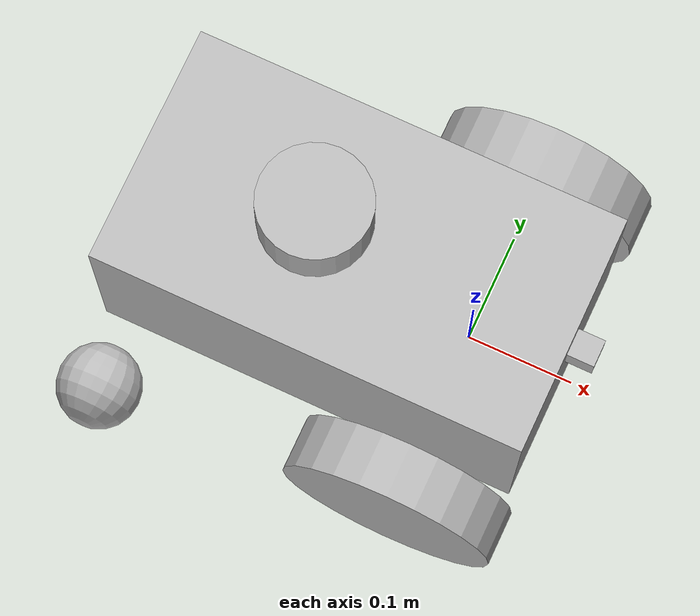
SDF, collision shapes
<?xml version="1.0" ?>
<sdf version="1.5">

<model name="magni_robot">
  <pose>0.0 0.0 0.0 0.0 0.0 0.0</pose>

  <link name="base_footprint"/>

  <link name="base_link">

    <inertial>
      <pose>-0.15 0 0.03 0 0 0</pose>
      <inertia>
        <ixx>0.0595</ixx>
        <ixy>0</ixy>
        <ixz>0</ixz>
        <iyy>0.1508</iyy>
        <iyz>0</iyz>
        <izz>0.1727</izz>
      </inertia>
      <mass>10</mass>
    </inertial>

    <collision name="base_collision">
      <pose>-0.11 0 0.07 0 0 0</pose>
      <geometry>
        <box>
          <size>0.4 0.22  0.195</size>
        </box>
      </geometry>
    </collision>

    <visual name="base_visual">
    <pose>-0.11 0 -0.029 0 0 0</pose>
    <geometry>
      <mesh>
        <uri>model://magni_robot/meshes/magni_body.dae</uri>
        <scale>1 1 1</scale>
      </mesh>
    </geometry>
    </visual>
  </link>

  <link name="imu_link">
    <sensor name="tb3_imu" type="imu">
      <always_on>true</always_on>
      <update_rate>10</update_rate>
      <imu>
      <angular_velocity>
        <x>
          <noise type="gaussian">
          <mean>0.0</mean>
          <stddev>2e-4</stddev>
          </noise>
        </x>
        <y>
          <noise type="gaussian">
          <mean>0.0</mean>
          <stddev>2e-4</stddev>
          </noise>
        </y>
        <z>
          <noise type="gaussian">
          <mean>0.0</mean>
          <stddev>2e-4</stddev>
          </noise>
        </z>
      </angular_velocity>
      <linear_acceleration>
        <x>
          <noise type="gaussian">
          <mean>0.0</mean>
          <stddev>1.7e-2</stddev>
          </noise>
        </x>
        <y>
          <noise type="gaussian">
          <mean>0.0</mean>
          <stddev>1.7e-2</stddev>
          </noise>
        </y>
        <z>
          <noise type="gaussian">
          <mean>0.0</mean>
          <stddev>1.7e-2</stddev>
          </noise>
        </z>
      </linear_acceleration>
      </imu>

      <plugin name="imu" filename="libgazebo_ros_imu_sensor.so">
        <ros>
        <remapping>~/out:=imu</remapping>
        </ros>
      </plugin>
    </sensor>
  </link>

  <link name="base_scan">
    <inertial>
      <pose>-0.15 0  0.195 0 0 0</pose>
      <inertia>
        <ixx>0.001</ixx>
        <ixy>0.000</ixy>
        <ixz>0.000</ixz>
        <iyy>0.001</iyy>
        <iyz>0.000</iyz>
        <izz>0.001</izz>
      </inertia>
      <mass>0.114</mass>
    </inertial>

    <collision name="lidar_sensor_collision">
      <pose>-0.15  0  0.195 0 0 0</pose>
      <geometry>
        <cylinder>
          <radius>0.0508</radius>
          <length>0.055</length>
        </cylinder>
      </geometry>
    </collision>

    <visual name="lidar_sensor_visual">
      <pose>-0.162 0 0.195 0 0 0</pose>
      <geometry>
        <cylinder>
          <radius>0.0508</radius>
          <length>0.055</length>
        </cylinder>
      </geometry>
    </visual>

    <sensor name="hls_lfcd_lds" type="ray">
      <visualize>true</visualize>
      <pose>-0.162 0 0.22 0 0 0</pose>
      <update_rate>30</update_rate>
      <ray>
        <scan>
          <horizontal>
            <samples>360</samples>
            <resolution>1.000000</resolution>
            <min_angle>0.000000</min_angle>
            <max_angle>6.28</max_angle>
          </horizontal>
        </scan>
        <range>
          <min>0.120000</min>
          <max>3.5</max>
          <resolution>0.015000</resolution>
        </range>
        <noise>
          <type>gaussian</type>
          <mean>0.0</mean>
          <stddev>0.01</stddev>
        </noise>
      </ray>

      <plugin name="Lidar_gazebo" filename="libgazebo_ros_ray_sensor.so">
        <ros>
          <remapping>~/out:=scan</remapping>
        </ros>
        <output_type>sensor_msgs/LaserScan</output_type>
        <frame_name>base_scan</frame_name>
      </plugin>
    </sensor>
  </link>

  <link name="wheel_left_link">

    <inertial>
      <pose>0 0.155  0 0 0 0</pose>
      <inertia>
        <ixx>0.0090</ixx>
        <ixy>0</ixy>
        <ixz>0</ixz>
        <iyy>0.0090</iyy>
        <iyz>0</iyz>
        <izz>0.0167</izz>
      </inertia>
      <mass>3.34</mass>
    </inertial>

    <collision name="wheel_left_collision">
      <pose>0 0.155 0 1.57 0 0</pose>
      <geometry>
      <cylinder>
      <radius>0.1</radius>
      <length>0.05</length>
      </cylinder>
      </geometry>
      <surface>
        <friction>
          <ode>
            <mu>1</mu>
            <mu2>0.5</mu2>
            <fdir1>0 0 1</fdir1>
            <slip1>0.0</slip1>
            <slip2>0.0</slip2>
          </ode>
        </friction>
        <contact>
          <ode>
            <soft_cfm>0</soft_cfm>
            <soft_erp>0.2</soft_erp>
            <kp>1e+8</kp>
            <kd>1</kd>
            <max_vel>0.01</max_vel>
            <min_depth>0.005</min_depth>
          </ode>
        </contact>
      </surface>
    </collision>

    <visual name="wheel_left_visual">
      <pose>0 0.085 0 0 0 1.57</pose>
      <geometry>
        <mesh>
          <uri>model://magni_robot/meshes/front_wheel.dae</uri>
          <scale>1 1 1</scale>
        </mesh>
      </geometry>
    </visual>
  </link>

  <link name="wheel_right_link">
    <inertial>
      <pose>0 -0.155  0 0 0 0</pose>
      <inertia>
        <ixx>0.0090</ixx>
        <ixy>0</ixy>
        <ixz>0</ixz>
        <iyy>0.0090</iyy>
        <iyz>0</iyz>
        <izz>0.0167</izz>
      </inertia>
      <mass>3.34</mass>
    </inertial>

    <collision name="wheel_right_collision">
      <pose>0.0 -0.155 0 1.57 0 0 </pose>
      <geometry>
      <cylinder>
      <radius>0.1</radius>
      <length>0.05</length>
      </cylinder>
      </geometry>
      <surface>
        <friction>
          <ode>
            <mu>1</mu>
            <mu2>0.5</mu2>
            <fdir1>0 0 1</fdir1>
            <slip1>0.0</slip1>
            <slip2>0.0</slip2>
          </ode>
        </friction>
        <contact>
          <ode>
            <soft_cfm>0</soft_cfm>
            <soft_erp>0.2</soft_erp>
            <kp>1e+8</kp>
            <kd>1</kd>
            <max_vel>0.01</max_vel>
            <min_depth>0.005</min_depth>
          </ode>
        </contact>
      </surface>
    </collision>

    <visual name="wheel_right_visual">
    <pose>0 -0.085 0 0 0 -1.57</pose>
    <geometry>
    <mesh>
    <uri>model://magni_robot/meshes/front_wheel.dae</uri>
    <scale>1 1 1</scale>
    </mesh>
    </geometry>
    </visual>
  </link>

  <link name='caster_right_link'>
    <pose>-0.081 0 -0.004 -1.57 0 0</pose>
    <inertial>
      <mass>0.005</mass>
      <inertia>
        <ixx>0.001</ixx>
        <ixy>0.000</ixy>
        <ixz>0.000</ixz>
        <iyy>0.001</iyy>
        <iyz>0.000</iyz>
        <izz>0.001</izz>
      </inertia>
    </inertial>
    <collision name='collision'>
      <pose>-0.21 0.055 -0.17 0 0 0</pose>
      <geometry>
        <sphere>
          <radius>0.04</radius>
        </sphere>
      </geometry>
      <surface>
        <friction>
          <ode>
            <mu>0</mu>
            <mu2>0</mu2>
            <fdir1>0 0 1</fdir1>
            <slip1>0.0</slip1>
            <slip2>0.0</slip2>
          </ode>
        </friction>
        <contact>
          <ode>
            <soft_cfm>0</soft_cfm>
            <soft_erp>0.2</soft_erp>
            <kp>1e+8</kp>
            <kd>1</kd>
            <max_vel>0.01</max_vel>
            <min_depth>0.001</min_depth>
          </ode>
        </contact>
      </surface>
    </collision>

    <visual name ="caster_right_link_visual">
      <pose>-0.19 0.0 -0.17 1.57 3.142 0</pose>
      <geometry>
        <mesh>
          <uri>model://magni_robot/meshes/caster_wheel.dae</uri>
          <scale>1 1 1</scale>
        </mesh>
      </geometry>
    </visual>
  </link>

  <link name='caster_left_link'>
    <pose>-0.081 0 -0.004 -1.57 0 0</pose>
    <inertial>
      <mass>0.005</mass>
      <inertia>
        <ixx>0.001</ixx>
        <ixy>0.000</ixy>
        <ixz>0.000</ixz>
        <iyy>0.001</iyy>
        <iyz>0.000</iyz>
        <izz>0.001</izz>
      </inertia>
    </inertial>
    <collision name='collision'>
      <pose>-0.21 0.055 -0.17 0 0 0</pose>
      <geometry>
        <sphere>
          <radius>0.04</radius>
        </sphere>
      </geometry>
      <surface>
        <friction>
          <ode>
            <mu>0</mu>
            <mu2>0</mu2>
            <fdir1>0 0 1</fdir1>
            <slip1>0.0</slip1>
            <slip2>0.0</slip2>
          </ode>
        </friction>
        <contact>
          <ode>
            <soft_cfm>0</soft_cfm>
            <soft_erp>0.2</soft_erp>
            <kp>1e+8</kp>
            <kd>1</kd>
            <max_vel>0.01</max_vel>
            <min_depth>0.001</min_depth>
          </ode>
        </contact>
      </surface>
    </collision>

    <visual name ="caster_left_link_visual">
      <pose>-0.19 0.0 0.17 1.57 3.142 0</pose>
      <geometry>
        <mesh>
          <uri>model://magni_robot/meshes/caster_wheel.dae</uri>
          <scale>1 1 1</scale>
        </mesh>
      </geometry>
    </visual>
  </link>

  <joint name="base_joint" type="fixed">
    <parent>base_footprint</parent>
    <child>base_link</child>
    <pose>0.0 0.0 0.1 0 0 0</pose>
  </joint>

  <joint name="wheel_left_joint" type="revolute">
    <parent>base_link</parent>
    <child>wheel_left_link</child>
    <pose>0.0 0.163 0 1.57 0 0</pose>
    <axis>
    <xyz>0 0 -1</xyz>
    </axis>
  </joint>

  <joint name="wheel_right_joint" type="revolute">
    <parent>base_link</parent>
    <child>wheel_right_link</child>
    <pose>0.0 -0.04 0 1.57 0 0</pose>
    <axis>
    <xyz>0 0 -1</xyz>
    </axis>
  </joint>

  <joint name='caster_back_left_joint' type='fixed'>
    <parent>base_link</parent>
    <child>caster_left_link</child>
    <pose>0.0 -0 0 -0 0 0</pose>
  </joint>

  <joint name='caster_back_right_joint' type='fixed'>
    <parent>base_link</parent>
    <child>caster_right_link</child>
    <pose>0.0 -0 0 -0 0 0</pose>
  </joint>

  <joint name="imu_joint" type="fixed">
    <parent>base_link</parent>
    <child>imu_link</child>
    <pose>-0.032 0 0.068 0 0 0</pose>
    <axis>
    <xyz>0 0 1</xyz>
    </axis>
  </joint>

  <joint name="lidar_joint" type="fixed">
    <parent>base_link</parent>
    <child>base_scan</child>
    <pose>-0.032 0 0.171 0 0 0</pose>
    <axis>
    <xyz>0 0 1</xyz>
    </axis>
  </joint>

  <plugin name="diff_drive" filename="libgazebo_ros_diff_drive.so">
    <ros> </ros>
    <update_rate>30</update_rate>

    <!-- wheels -->
    <left_joint>wheel_left_joint</left_joint>
    <right_joint>wheel_right_joint</right_joint>

    <!-- kinematics -->
    <wheel_separation>0.24</wheel_separation>
    <wheel_diameter>0.2</wheel_diameter>

    <!-- limits -->
    <max_wheel_torque>20</max_wheel_torque>
    <max_wheel_acceleration>1.0</max_wheel_acceleration>

    <command_topic>cmd_vel</command_topic>

    <!-- output -->
    <publish_odom>true</publish_odom>
    <publish_odom_tf>true</publish_odom_tf>
    <publish_wheel_tf>false</publish_wheel_tf>

    <odometry_topic>odom</odometry_topic>
    <odometry_frame>odom</odometry_frame>
    <robot_base_frame>base_footprint</robot_base_frame>
  </plugin>

  <!-- Camera realsense -->
  <include>
    <name>front_cam</name>
    <uri>model://realsense</uri>
    <pose>0.07  0.0  0.13 0 0 0</pose>
  </include>

  <!-- Intel realsense camera joint-->

  <joint name="front_realsense_joint" type="fixed">
    <child>front_cam::camera_depth_optical_frame</child>
    <parent>base_link</parent>
    <pose>0.07  0  0.13 0 0 0</pose>
    <axis>
      <xyz>0 0 1</xyz>
    </axis>
  </joint>

</model>
</sdf>

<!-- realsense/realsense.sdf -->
<sdf version="1.5">

<model name="realsense">

  <link name="camera_depth_optical_frame">
    <inertial>
      <pose>0.0  0  0.0 0 0 0</pose>
      <inertia>
        <ixx>0.001</ixx>
        <ixy>0.000</ixy>
        <ixz>0.000</ixz>
        <iyy>0.001</iyy>
        <iyz>0.000</iyz>
        <izz>0.001</izz>
      </inertia>
      <mass>0.1</mass>
    </inertial>

    <collision name="realsense_collision">
      <pose>0.0  0  0.0 0 0 0</pose>
      <geometry>
        <box>
          <size>0.09 0.025  0.025</size>
        </box>
      </geometry>
    </collision>

    <visual name="realsense_visual">
      <pose>0.0  0  0.0 0 0 1.57</pose>
      <geometry>
        <box>
          <size>0.09 0.025  0.025</size>
        </box>
      </geometry>
    </visual>

    <sensor name="intel_realsense_d435_depth" type="depth">
      <always_on>1</always_on>
      <update_rate>5</update_rate>
      <pose>0.0  0  0.0 0 0 0</pose>
      <camera name="realsense_depth_camera">
      </camera>
      <plugin name="intel_realsense_d435_depth_driver" filename="libgazebo_ros_camera.so">
        <ros>
        </ros>
        <camera_name>intel_realsense_d435_depth</camera_name>
        <frame_name>camera_depth_optical_frame</frame_name>
        <hack_baseline>0.07</hack_baseline>
        <min_depth>0.28</min_depth>
        <max_depth>5.0</max_depth>
      </plugin>
    </sensor>

  </link>

</model>
</sdf>
